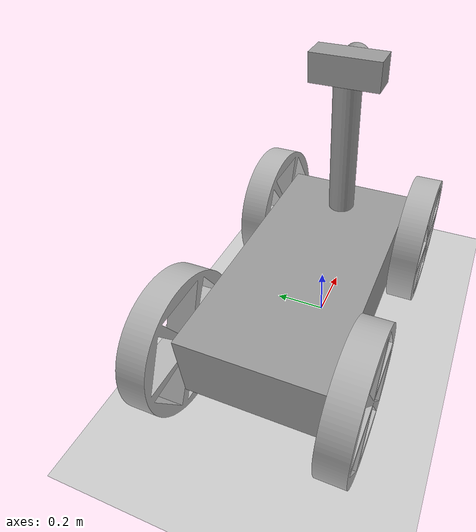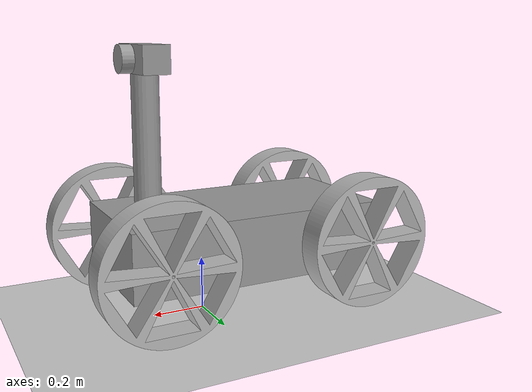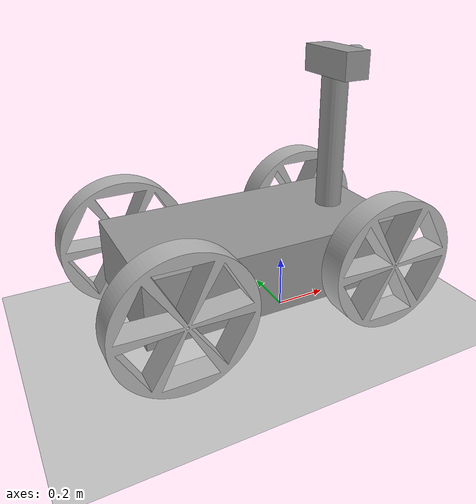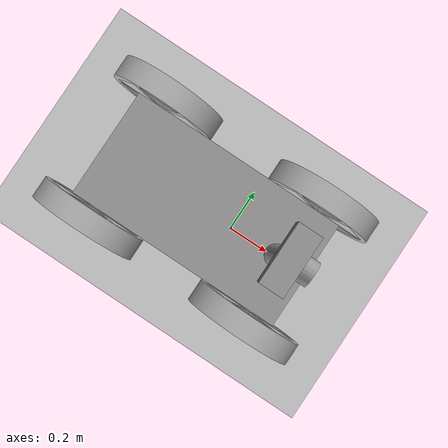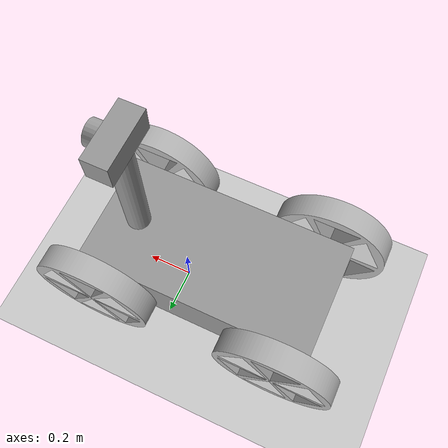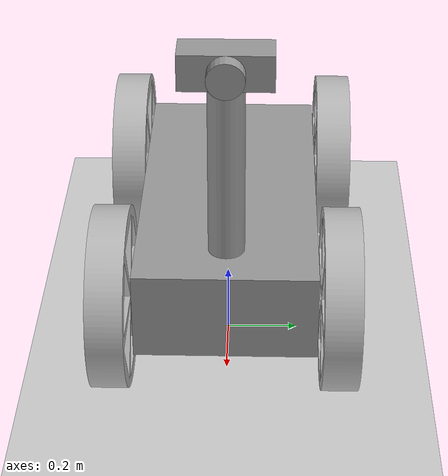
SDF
<sdf version="1.7">
	<world name="project_world">
	<plugin
		filename="ignition-gazebo-physics-system"
		name="gz::sim::systems::Physics">
	</plugin>
	<plugin
		filename="ignition-gazebo-sensors-system"
		name="gz::sim::systems::Sensors">
		<render_engine>ogre</render_engine>
	</plugin>
	<plugin
		filename="ignition-gazebo-user-commands-system"
		name="gz::sim::systems::UserCommands">
	</plugin>
	<plugin
		filename="ignition-gazebo-scene-broadcaster-system"
		name="gz::sim::systems::SceneBroadcaster">
	</plugin>

		<gravity>0 0 -9.8</gravity>
		<include>
			<uri>	https://fuel.gazebosim.org/1.0/OpenRobotics/models/Sun</uri>
		</include>

		<include>
			<uri>ground_plane</uri>
		</include>
		<include>
			<pose>0 0 0.5 0 0 0</pose>
			<uri>mobile_camera</uri>
		</include>

	</world>
</sdf>

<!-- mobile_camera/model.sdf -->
<sdf version='1.7'>
  <model name='mobile_camera'>
    <link name='link_0'>
      <inertial>
        <mass>1</mass>
        <inertia>
          <ixx>0.166667</ixx>
          <ixy>0</ixy>
          <ixz>0</ixz>
          <iyy>0.166667</iyy>
          <iyz>0</iyz>
          <izz>0.166667</izz>
        </inertia>
        <pose>0 0 0 0 -0 0</pose>
      </inertial>
      <pose>-0.14 0 -0.215625 0 -0 0</pose>
      <gravity>1</gravity>
      <self_collide>0</self_collide>
      <kinematic>0</kinematic>
      <enable_wind>0</enable_wind>
      <visual name='visual'>
        <pose>0 0 0 0 -0 0</pose>
        <geometry>
          <box>
            <size>1 0.5 0.25</size>
          </box>
        </geometry>
        <material>
          <lighting>1</lighting>
          <script>
            <uri>file://media/materials/scripts/gazebo.material</uri>
            <name>Gazebo/Grey</name>
          </script>
          <shader type='pixel'>
            <normal_map>__default__</normal_map>
          </shader>
          <ambient>0.3 0.3 0.3 1</ambient>
          <diffuse>0.7 0.7 0.7 1</diffuse>
          <specular>0.01 0.01 0.01 1</specular>
          <emissive>0 0 0 1</emissive>
        </material>
        <transparency>0</transparency>
        <cast_shadows>1</cast_shadows>
      </visual>
      <collision name='collision'>
        <laser_retro>0</laser_retro>
        <max_contacts>10</max_contacts>
        <pose>0 0 0 0 -0 0</pose>
        <geometry>
          <box>
            <size>1 0.5 0.25</size>
          </box>
        </geometry>
        <surface>
          <friction>
            <ode>
              <mu>1</mu>
              <mu2>1</mu2>
              <fdir1>0 0 0</fdir1>
              <slip1>0</slip1>
              <slip2>0</slip2>
            </ode>
            <torsional>
              <coefficient>1</coefficient>
              <patch_radius>0</patch_radius>
              <surface_radius>0</surface_radius>
              <use_patch_radius>1</use_patch_radius>
              <ode>
                <slip>0</slip>
              </ode>
            </torsional>
          </friction>
          <bounce>
            <restitution_coefficient>0</restitution_coefficient>
            <threshold>1e+06</threshold>
          </bounce>
          <contact>
            <collide_without_contact>0</collide_without_contact>
            <collide_without_contact_bitmask>1</collide_without_contact_bitmask>
            <collide_bitmask>1</collide_bitmask>
            <ode>
              <soft_cfm>0</soft_cfm>
              <soft_erp>0.2</soft_erp>
              <kp>1e+13</kp>
              <kd>1</kd>
              <max_vel>0.01</max_vel>
              <min_depth>0</min_depth>
            </ode>
            <bullet>
              <split_impulse>1</split_impulse>
              <split_impulse_penetration_threshold>-0.01</split_impulse_penetration_threshold>
              <soft_cfm>0</soft_cfm>
              <soft_erp>0.2</soft_erp>
              <kp>1e+13</kp>
              <kd>1</kd>
            </bullet>
          </contact>
        </surface>
      </collision>
    </link>
    <link name='link_2'>
      <inertial>
        <mass>1</mass>
        <inertia>
          <ixx>0.145833</ixx>
          <ixy>0</ixy>
          <ixz>0</ixz>
          <iyy>0.145833</iyy>
          <iyz>0</iyz>
          <izz>0.125</izz>
        </inertia>
        <pose>0 0 0 0 -0 0</pose>
      </inertial>
      <pose>0.26 0.31 -0.215625 1.5708 -0 0</pose>
      <gravity>1</gravity>
      <self_collide>0</self_collide>
      <kinematic>0</kinematic>
      <enable_wind>0</enable_wind>
      <visual name='visual'>
        <pose>0 0 0 1.5708 -0 0</pose>
        <geometry>
          <mesh>
            <uri>file:///home/yousef/ros2_cpp_ws/src/cpp_pkg/models/meshes/wheel_red.obj</uri>
            <scale>1 1 1</scale>
          </mesh>
        </geometry>
      </visual>
      <collision name='collision'>
        <laser_retro>0</laser_retro>
        <max_contacts>10</max_contacts>
        <pose>0 0 0 0 -0 0</pose>
        <geometry>
          <cylinder>
            <radius>0.25</radius>
            <length>0.1</length>
          </cylinder>
        </geometry>
        <surface>
          <friction>
            <ode>
              <mu>1</mu>
              <mu2>1</mu2>
              <fdir1>0 0 0</fdir1>
              <slip1>0</slip1>
              <slip2>0</slip2>
            </ode>
            <torsional>
              <coefficient>1</coefficient>
              <patch_radius>0</patch_radius>
              <surface_radius>0</surface_radius>
              <use_patch_radius>1</use_patch_radius>
              <ode>
                <slip>0</slip>
              </ode>
            </torsional>
          </friction>
          <bounce>
            <restitution_coefficient>0</restitution_coefficient>
            <threshold>1e+06</threshold>
          </bounce>
          <contact>
            <collide_without_contact>0</collide_without_contact>
            <collide_without_contact_bitmask>1</collide_without_contact_bitmask>
            <collide_bitmask>1</collide_bitmask>
            <ode>
              <soft_cfm>0</soft_cfm>
              <soft_erp>0.2</soft_erp>
              <kp>1e+13</kp>
              <kd>1</kd>
              <max_vel>0.01</max_vel>
              <min_depth>0</min_depth>
            </ode>
            <bullet>
              <split_impulse>1</split_impulse>
              <split_impulse_penetration_threshold>-0.01</split_impulse_penetration_threshold>
              <soft_cfm>0</soft_cfm>
              <soft_erp>0.2</soft_erp>
              <kp>1e+13</kp>
              <kd>1</kd>
            </bullet>
          </contact>
        </surface>
      </collision>
    </link>
    <link name='link_2_clone'>
      <inertial>
        <mass>1</mass>
        <inertia>
          <ixx>0.145833</ixx>
          <ixy>0</ixy>
          <ixz>0</ixz>
          <iyy>0.145833</iyy>
          <iyz>0</iyz>
          <izz>0.125</izz>
        </inertia>
        <pose>0 0 0 0 -0 0</pose>
      </inertial>
      <pose>0.26 -0.31 -0.215625 1.5708 -0 0</pose>
      <gravity>1</gravity>
      <self_collide>0</self_collide>
      <kinematic>0</kinematic>
      <enable_wind>0</enable_wind>
      <visual name='visual'>
        <pose>0 0 0 1.5708 -0 0</pose>
        <geometry>
          <mesh>
            <uri>file:///home/yousef/ros2_cpp_ws/src/cpp_pkg/models/meshes/wheel_red.obj</uri>
            <scale>1 1 1</scale>
          </mesh>
        </geometry>
      </visual>
      <collision name='collision'>
        <laser_retro>0</laser_retro>
        <max_contacts>10</max_contacts>
        <pose>0 0 0 0 -0 0</pose>
        <geometry>
          <cylinder>
            <radius>0.25</radius>
            <length>0.1</length>
          </cylinder>
        </geometry>
        <surface>
          <friction>
            <ode>
              <mu>1</mu>
              <mu2>1</mu2>
              <fdir1>0 0 0</fdir1>
              <slip1>0</slip1>
              <slip2>0</slip2>
            </ode>
            <torsional>
              <coefficient>1</coefficient>
              <patch_radius>0</patch_radius>
              <surface_radius>0</surface_radius>
              <use_patch_radius>1</use_patch_radius>
              <ode>
                <slip>0</slip>
              </ode>
            </torsional>
          </friction>
          <bounce>
            <restitution_coefficient>0</restitution_coefficient>
            <threshold>1e+06</threshold>
          </bounce>
          <contact>
            <collide_without_contact>0</collide_without_contact>
            <collide_without_contact_bitmask>1</collide_without_contact_bitmask>
            <collide_bitmask>1</collide_bitmask>
            <ode>
              <soft_cfm>0</soft_cfm>
              <soft_erp>0.2</soft_erp>
              <kp>1e+13</kp>
              <kd>1</kd>
              <max_vel>0.01</max_vel>
              <min_depth>0</min_depth>
            </ode>
            <bullet>
              <split_impulse>1</split_impulse>
              <split_impulse_penetration_threshold>-0.01</split_impulse_penetration_threshold>
              <soft_cfm>0</soft_cfm>
              <soft_erp>0.2</soft_erp>
              <kp>1e+13</kp>
              <kd>1</kd>
            </bullet>
          </contact>
        </surface>
      </collision>
    </link>
    <link name='link_2_clone_0'>
      <inertial>
        <mass>1</mass>
        <inertia>
          <ixx>0.145833</ixx>
          <ixy>0</ixy>
          <ixz>0</ixz>
          <iyy>0.145833</iyy>
          <iyz>0</iyz>
          <izz>0.125</izz>
        </inertia>
        <pose>0 0 0 0 -0 0</pose>
      </inertial>
      <pose>-0.54 0.31 -0.215625 1.5708 -0 0</pose>
      <gravity>1</gravity>
      <self_collide>0</self_collide>
      <kinematic>0</kinematic>
      <enable_wind>0</enable_wind>
      <visual name='visual'>
        <pose>0 0 0 1.5708 -0 0</pose>
        <geometry>
          <mesh>
            <uri>file:///home/yousef/ros2_cpp_ws/src/cpp_pkg/models/meshes/wheel_red.obj</uri>
            <scale>1 1 1</scale>
          </mesh>
        </geometry>
      </visual>
      <collision name='collision'>
        <laser_retro>0</laser_retro>
        <max_contacts>10</max_contacts>
        <pose>0 0 0 0 -0 0</pose>
        <geometry>
          <cylinder>
            <radius>0.25</radius>
            <length>0.1</length>
          </cylinder>
        </geometry>
        <surface>
          <friction>
            <ode>
              <mu>0.1</mu>
              <mu2>0.1</mu2>
              <fdir1>0 0 0</fdir1>
              <slip1>0</slip1>
              <slip2>0</slip2>
            </ode>
            <torsional>
              <coefficient>1</coefficient>
              <patch_radius>0</patch_radius>
              <surface_radius>0</surface_radius>
              <use_patch_radius>1</use_patch_radius>
              <ode>
                <slip>0</slip>
              </ode>
            </torsional>
          </friction>
          <bounce>
            <restitution_coefficient>0</restitution_coefficient>
            <threshold>1e+06</threshold>
          </bounce>
          <contact>
            <collide_without_contact>0</collide_without_contact>
            <collide_without_contact_bitmask>1</collide_without_contact_bitmask>
            <collide_bitmask>1</collide_bitmask>
            <ode>
              <soft_cfm>0</soft_cfm>
              <soft_erp>0.2</soft_erp>
              <kp>1e+13</kp>
              <kd>1</kd>
              <max_vel>0.01</max_vel>
              <min_depth>0</min_depth>
            </ode>
            <bullet>
              <split_impulse>1</split_impulse>
              <split_impulse_penetration_threshold>-0.01</split_impulse_penetration_threshold>
              <soft_cfm>0</soft_cfm>
              <soft_erp>0.2</soft_erp>
              <kp>1e+13</kp>
              <kd>1</kd>
            </bullet>
          </contact>
        </surface>
      </collision>
    </link>
    <link name='link_2_clone_1'>
      <inertial>
        <mass>1</mass>
        <inertia>
          <ixx>0.145833</ixx>
          <ixy>0</ixy>
          <ixz>0</ixz>
          <iyy>0.145833</iyy>
          <iyz>0</iyz>
          <izz>0.125</izz>
        </inertia>
        <pose>0 0 0 0 -0 0</pose>
      </inertial>
      <pose>-0.54 -0.31 -0.215625 1.5708 -0 0</pose>
      <gravity>1</gravity>
      <self_collide>0</self_collide>
      <kinematic>0</kinematic>
      <enable_wind>0</enable_wind>
      <visual name='visual'>
        <pose>0 0 0 1.5708 -0 0</pose>
        <geometry>
          <mesh>
            <uri>file:///home/yousef/ros2_cpp_ws/src/cpp_pkg/models/meshes/wheel_red.obj</uri>
            <scale>1 1 1</scale>
          </mesh>
        </geometry>
      </visual>
      <collision name='collision'>
        <laser_retro>0</laser_retro>
        <max_contacts>10</max_contacts>
        <pose>0 0 0 0 -0 0</pose>
        <geometry>
          <cylinder>
            <radius>0.25</radius>
            <length>0.1</length>
          </cylinder>
        </geometry>
        <surface>
          <friction>
            <ode>
              <mu>0.1</mu>
              <mu2>0.1</mu2>
              <fdir1>0 0 0</fdir1>
              <slip1>0</slip1>
              <slip2>0</slip2>
            </ode>
            <torsional>
              <coefficient>1</coefficient>
              <patch_radius>0</patch_radius>
              <surface_radius>0</surface_radius>
              <use_patch_radius>1</use_patch_radius>
              <ode>
                <slip>0</slip>
              </ode>
            </torsional>
          </friction>
          <bounce>
            <restitution_coefficient>0</restitution_coefficient>
            <threshold>1e+06</threshold>
          </bounce>
          <contact>
            <collide_without_contact>0</collide_without_contact>
            <collide_without_contact_bitmask>1</collide_without_contact_bitmask>
            <collide_bitmask>1</collide_bitmask>
            <ode>
              <soft_cfm>0</soft_cfm>
              <soft_erp>0.2</soft_erp>
              <kp>1e+13</kp>
              <kd>1</kd>
              <max_vel>0.01</max_vel>
              <min_depth>0</min_depth>
            </ode>
            <bullet>
              <split_impulse>1</split_impulse>
              <split_impulse_penetration_threshold>-0.01</split_impulse_penetration_threshold>
              <soft_cfm>0</soft_cfm>
              <soft_erp>0.2</soft_erp>
              <kp>1e+13</kp>
              <kd>1</kd>
            </bullet>
          </contact>
        </surface>
      </collision>
    </link>
    <link name='link_3'>
      <inertial>
        <mass>1</mass>
        <inertia>
          <ixx>0.145833</ixx>
          <ixy>0</ixy>
          <ixz>0</ixz>
          <iyy>0.145833</iyy>
          <iyz>0</iyz>
          <izz>0.125</izz>
        </inertia>
        <pose>0 0 0 0 -0 0</pose>
      </inertial>
      <pose>0.21 0 0.159375 0 -0 0</pose>
      <gravity>1</gravity>
      <self_collide>0</self_collide>
      <kinematic>0</kinematic>
      <enable_wind>0</enable_wind>
      <visual name='visual'>
        <pose>0 0 0 0 -0 0</pose>
        <geometry>
          <cylinder>
            <radius>0.05</radius>
            <length>0.5</length>
          </cylinder>
        </geometry>
        <material>
          <lighting>1</lighting>
          <script>
            <uri>file://media/materials/scripts/gazebo.material</uri>
            <name>Gazebo/Grey</name>
          </script>
          <shader type='pixel'>
            <normal_map>__default__</normal_map>
          </shader>
          <ambient>0.3 0.3 0.3 1</ambient>
          <diffuse>0.7 0.7 0.7 1</diffuse>
          <specular>0.01 0.01 0.01 1</specular>
          <emissive>0 0 0 1</emissive>
        </material>
        <transparency>0</transparency>
        <cast_shadows>1</cast_shadows>
      </visual>
      <collision name='collision'>
        <laser_retro>0</laser_retro>
        <max_contacts>10</max_contacts>
        <pose>0 0 0 0 -0 0</pose>
        <geometry>
          <cylinder>
            <radius>0.05</radius>
            <length>0.5</length>
          </cylinder>
        </geometry>
        <surface>
          <friction>
            <ode>
              <mu>1</mu>
              <mu2>1</mu2>
              <fdir1>0 0 0</fdir1>
              <slip1>0</slip1>
              <slip2>0</slip2>
            </ode>
            <torsional>
              <coefficient>1</coefficient>
              <patch_radius>0</patch_radius>
              <surface_radius>0</surface_radius>
              <use_patch_radius>1</use_patch_radius>
              <ode>
                <slip>0</slip>
              </ode>
            </torsional>
          </friction>
          <bounce>
            <restitution_coefficient>0</restitution_coefficient>
            <threshold>1e+06</threshold>
          </bounce>
          <contact>
            <collide_without_contact>0</collide_without_contact>
            <collide_without_contact_bitmask>1</collide_without_contact_bitmask>
            <collide_bitmask>1</collide_bitmask>
            <ode>
              <soft_cfm>0</soft_cfm>
              <soft_erp>0.2</soft_erp>
              <kp>1e+13</kp>
              <kd>1</kd>
              <max_vel>0.01</max_vel>
              <min_depth>0</min_depth>
            </ode>
            <bullet>
              <split_impulse>1</split_impulse>
              <split_impulse_penetration_threshold>-0.01</split_impulse_penetration_threshold>
              <soft_cfm>0</soft_cfm>
              <soft_erp>0.2</soft_erp>
              <kp>1e+13</kp>
              <kd>1</kd>
            </bullet>
          </contact>
        </surface>
      </collision>
    </link>
    <link name='link_4'>
      <inertial>
        <mass>1</mass>
        <inertia>
          <ixx>0.166667</ixx>
          <ixy>0</ixy>
          <ixz>0</ixz>
          <iyy>0.166667</iyy>
          <iyz>0</iyz>
          <izz>0.166667</izz>
        </inertia>
        <pose>0 0 0 0 -0 0</pose>
      </inertial>
      <pose>0.21 0 0.459375 0 -0 0</pose>
      <gravity>1</gravity>
      <self_collide>0</self_collide>
      <kinematic>0</kinematic>
      <enable_wind>0</enable_wind>
      <visual name='visual'>
        <pose>0 0 0 0 -0 0</pose>
        <geometry>
          <box>
            <size>0.1 0.25 0.1</size>
          </box>
        </geometry>
        <material>
          <lighting>1</lighting>
          <script>
            <uri>file://media/materials/scripts/gazebo.material</uri>
            <name>Gazebo/Grey</name>
          </script>
          <shader type='pixel'>
            <normal_map>__default__</normal_map>
          </shader>
          <ambient>0.3 0.3 0.3 1</ambient>
          <diffuse>0.7 0.7 0.7 1</diffuse>
          <specular>0.01 0.01 0.01 1</specular>
          <emissive>0 0 0 1</emissive>
        </material>
        <transparency>0</transparency>
        <cast_shadows>1</cast_shadows>
      </visual>
      <collision name='collision'>
        <laser_retro>0</laser_retro>
        <max_contacts>10</max_contacts>
        <pose>0 0 0 0 -0 0</pose>
        <geometry>
          <box>
            <size>0.1 0.25 0.1</size>
          </box>
        </geometry>
        <surface>
          <friction>
            <ode>
              <mu>1</mu>
              <mu2>1</mu2>
              <fdir1>0 0 0</fdir1>
              <slip1>0</slip1>
              <slip2>0</slip2>
            </ode>
            <torsional>
              <coefficient>1</coefficient>
              <patch_radius>0</patch_radius>
              <surface_radius>0</surface_radius>
              <use_patch_radius>1</use_patch_radius>
              <ode>
                <slip>0</slip>
              </ode>
            </torsional>
          </friction>
          <bounce>
            <restitution_coefficient>0</restitution_coefficient>
            <threshold>1e+06</threshold>
          </bounce>
          <contact>
            <collide_without_contact>0</collide_without_contact>
            <collide_without_contact_bitmask>1</collide_without_contact_bitmask>
            <collide_bitmask>1</collide_bitmask>
            <ode>
              <soft_cfm>0</soft_cfm>
              <soft_erp>0.2</soft_erp>
              <kp>1e+13</kp>
              <kd>1</kd>
              <max_vel>0.01</max_vel>
              <min_depth>0</min_depth>
            </ode>
            <bullet>
              <split_impulse>1</split_impulse>
              <split_impulse_penetration_threshold>-0.01</split_impulse_penetration_threshold>
              <soft_cfm>0</soft_cfm>
              <soft_erp>0.2</soft_erp>
              <kp>1e+13</kp>
              <kd>1</kd>
            </bullet>
          </contact>
        </surface>
      </collision>
      <sensor name="camera" type="camera">
        <pose>0.25 0 0 0 0 0</pose>
        <camera>
          <horizontal_fov>1.047</horizontal_fov>
          <image>
            <width>640</width>
            <height>480</height>
          </image>
          <clip>
            <near>0.1</near>
            <far>100</far>
          </clip>
        </camera>
        <always_on>1</always_on>
        <update_rate>60</update_rate>
        <visualize>true</visualize>
        <topic>camera</topic>
      </sensor>
    </link>
    <link name='link_5'>
      <inertial>
        <mass>1</mass>
        <inertia>
          <ixx>0.145833</ixx>
          <ixy>0</ixy>
          <ixz>0</ixz>
          <iyy>0.145833</iyy>
          <iyz>0</iyz>
          <izz>0.125</izz>
        </inertia>
        <pose>0 0 0 0 -0 0</pose>
      </inertial>
      <pose>0.28 0 0.459375 3.14159 1.57079 3.14159</pose>
      <gravity>1</gravity>
      <self_collide>0</self_collide>
      <kinematic>0</kinematic>
      <enable_wind>0</enable_wind>
      <visual name='visual'>
        <pose>0 0 0 0 -0 0</pose>
        <geometry>
          <cylinder>
            <radius>0.05</radius>
            <length>0.05</length>
          </cylinder>
        </geometry>
        <material>
          <lighting>1</lighting>
          <script>
            <uri>file://media/materials/scripts/gazebo.material</uri>
            <name>Gazebo/Grey</name>
          </script>
          <shader type='pixel'>
            <normal_map>__default__</normal_map>
          </shader>
          <ambient>0.3 0.3 0.3 1</ambient>
          <diffuse>0.7 0.7 0.7 1</diffuse>
          <specular>0.01 0.01 0.01 1</specular>
          <emissive>0 0 0 1</emissive>
        </material>
        <transparency>0</transparency>
        <cast_shadows>1</cast_shadows>
      </visual>
      <collision name='collision'>
        <laser_retro>0</laser_retro>
        <max_contacts>10</max_contacts>
        <pose>0 0 0 0 -0 0</pose>
        <geometry>
          <cylinder>
            <radius>0.05</radius>
            <length>0.05</length>
          </cylinder>
        </geometry>
        <surface>
          <friction>
            <ode>
              <mu>1</mu>
              <mu2>1</mu2>
              <fdir1>0 0 0</fdir1>
              <slip1>0</slip1>
              <slip2>0</slip2>
            </ode>
            <torsional>
              <coefficient>1</coefficient>
              <patch_radius>0</patch_radius>
              <surface_radius>0</surface_radius>
              <use_patch_radius>1</use_patch_radius>
              <ode>
                <slip>0</slip>
              </ode>
            </torsional>
          </friction>
          <bounce>
            <restitution_coefficient>0</restitution_coefficient>
            <threshold>1e+06</threshold>
          </bounce>
          <contact>
            <collide_without_contact>0</collide_without_contact>
            <collide_without_contact_bitmask>1</collide_without_contact_bitmask>
            <collide_bitmask>1</collide_bitmask>
            <ode>
              <soft_cfm>0</soft_cfm>
              <soft_erp>0.2</soft_erp>
              <kp>1e+13</kp>
              <kd>1</kd>
              <max_vel>0.01</max_vel>
              <min_depth>0</min_depth>
            </ode>
            <bullet>
              <split_impulse>1</split_impulse>
              <split_impulse_penetration_threshold>-0.01</split_impulse_penetration_threshold>
              <soft_cfm>0</soft_cfm>
              <soft_erp>0.2</soft_erp>
              <kp>1e+13</kp>
              <kd>1</kd>
            </bullet>
          </contact>
        </surface>
      </collision>
    </link>
    <joint name='link_0_JOINT_0' type='revolute'>
      <parent>link_0</parent>
      <child>link_2</child>
      <pose>0 0 0 0 -0 0</pose>
      <axis>
        <xyz>-0 -0 -1</xyz>
        <limit>
          <lower>-1.79769e+308</lower>
          <upper>1.79769e+308</upper>
          <effort>-1</effort>
          <velocity>-1</velocity>
        </limit>
        <dynamics>
          <spring_reference>0</spring_reference>
          <spring_stiffness>0</spring_stiffness>
          <damping>0</damping>
        </dynamics>
      </axis>
      <physics>
        <ode>
          <limit>
            <cfm>0</cfm>
            <erp>0.2</erp>
          </limit>
          <suspension>
            <cfm>0</cfm>
            <erp>0.2</erp>
          </suspension>
        </ode>
      </physics>
    </joint>
    <joint name='link_0_JOINT_1' type='revolute'>
      <parent>link_0</parent>
      <child>link_2_clone</child>
      <pose>0 0 0 0 -0 0</pose>
      <axis>
        <xyz>-0 -0 -1</xyz>
        <limit>
          <lower>-1.79769e+308</lower>
          <upper>1.79769e+308</upper>
          <effort>-1</effort>
          <velocity>-1</velocity>
        </limit>
        <dynamics>
          <spring_reference>0</spring_reference>
          <spring_stiffness>0</spring_stiffness>
          <damping>0</damping>
        </dynamics>
      </axis>
      <physics>
        <ode>
          <limit>
            <cfm>0</cfm>
            <erp>0.2</erp>
          </limit>
          <suspension>
            <cfm>0</cfm>
            <erp>0.2</erp>
          </suspension>
        </ode>
      </physics>
    </joint>
    <joint name='link_0_JOINT_2' type='revolute'>
      <parent>link_0</parent>
      <child>link_2_clone_0</child>
      <pose>0 0 0 0 -0 0</pose>
      <axis>
        <xyz>-0 -0 -1</xyz>
        <limit>
          <lower>-1.79769e+308</lower>
          <upper>1.79769e+308</upper>
          <effort>-1</effort>
          <velocity>-1</velocity>
        </limit>
        <dynamics>
          <spring_reference>0</spring_reference>
          <spring_stiffness>0</spring_stiffness>
          <damping>0</damping>
        </dynamics>
      </axis>
      <physics>
        <ode>
          <limit>
            <cfm>0</cfm>
            <erp>0.2</erp>
          </limit>
          <suspension>
            <cfm>0</cfm>
            <erp>0.2</erp>
          </suspension>
        </ode>
      </physics>
    </joint>
    <joint name='link_0_JOINT_3' type='revolute'>
      <parent>link_0</parent>
      <child>link_2_clone_1</child>
      <pose>0 0 0 0 -0 0</pose>
      <axis>
        <xyz>-0 -0 -1</xyz>
        <limit>
          <lower>-1.79769e+308</lower>
          <upper>1.79769e+308</upper>
          <effort>-1</effort>
          <velocity>-1</velocity>
        </limit>
        <dynamics>
          <spring_reference>0</spring_reference>
          <spring_stiffness>0</spring_stiffness>
          <damping>0</damping>
        </dynamics>
      </axis>
      <physics>
        <ode>
          <limit>
            <cfm>0</cfm>
            <erp>0.2</erp>
          </limit>
          <suspension>
            <cfm>0</cfm>
            <erp>0.2</erp>
          </suspension>
        </ode>
      </physics>
    </joint>
    <joint name='link_0_JOINT_4' type='revolute'>
      <parent>link_0</parent>
      <child>link_3</child>
      <pose>0 0 0 0 -0 0</pose>
      <axis>
        <xyz>0 0 1</xyz>
        <limit>
          <lower>-1.79769e+308</lower>
          <upper>1.79769e+308</upper>
          <effort>-1</effort>
          <velocity>-1</velocity>
        </limit>
        <dynamics>
          <spring_reference>0</spring_reference>
          <spring_stiffness>0</spring_stiffness>
          <damping>0.5</damping>
        </dynamics>
      </axis>
      <physics>
        <ode>
          <limit>
            <cfm>0</cfm>
            <erp>0.2</erp>
          </limit>
          <suspension>
            <cfm>0</cfm>
            <erp>0.2</erp>
          </suspension>
        </ode>
      </physics>
    </joint>
    <joint name='link_3_JOINT_5' type='fixed'>
      <parent>link_3</parent>
      <child>link_4</child>
      <pose>0 0 0 0 -0 0</pose>
      <physics>
        <ode>
          <limit>
            <cfm>0</cfm>
            <erp>0.2</erp>
          </limit>
          <suspension>
            <cfm>0</cfm>
            <erp>0.2</erp>
          </suspension>
        </ode>
      </physics>
    </joint>
    <joint name='link_4_JOINT_6' type='fixed'>
      <parent>link_4</parent>
      <child>link_5</child>
      <pose>0 0 0 0 -0 0</pose>
      <physics>
        <ode>
          <limit>
            <cfm>0</cfm>
            <erp>0.2</erp>
          </limit>
          <suspension>
            <cfm>0</cfm>
            <erp>0.2</erp>
          </suspension>
        </ode>
      </physics>
    </joint>
    <static>0</static>
    <allow_auto_disable>1</allow_auto_disable>
    <plugin
    filename="ignition-gazebo-diff-drive-system"
    name="gz::sim::systems::DiffDrive">
      <left_joint>link_0_JOINT_0</left_joint>
      <right_joint>link_0_JOINT_1</right_joint>
      <wheel_separation>0.62</wheel_separation>
      <wheel_radius>0.25</wheel_radius>
      <max_linear_acceleration>1</max_linear_acceleration>
      <min_linear_acceleration>-1</min_linear_acceleration>
      <max_angular_acceleration>2</max_angular_acceleration>
      <min_angular_acceleration>-2</min_angular_acceleration>
      <max_linear_velocity>3</max_linear_velocity>
      <min_linear_velocity>-3</min_linear_velocity>
      <max_angular_velocity>1</max_angular_velocity>
      <min_angular_velocity>-1</min_angular_velocity>
      <topic>/cmd_vel</topic>
    </plugin>
    <plugin
    filename="ignition-gazebo-diff-drive-system"
    name="gz::sim::systems::DiffDrive">
      <left_joint>link_0_JOINT_2</left_joint>
      <right_joint>link_0_JOINT_3</right_joint>
      <wheel_separation>0.62</wheel_separation>
      <wheel_radius>0.25</wheel_radius>
      <max_linear_acceleration>1</max_linear_acceleration>
      <min_linear_acceleration>-1</min_linear_acceleration>
      <max_angular_acceleration>2</max_angular_acceleration>
      <min_angular_acceleration>-2</min_angular_acceleration>
      <max_linear_velocity>3</max_linear_velocity>
      <min_linear_velocity>-3</min_linear_velocity>
      <max_angular_velocity>1</max_angular_velocity>
      <min_angular_velocity>-1</min_angular_velocity>
      <topic>/cmd_vel</topic>
    </plugin>
    <plugin
    filename="ignition-gazebo-joint-position-controller-system"
    name="gz::sim::systems::JointPositionController">
    <joint_name>link_0_JOINT_4</joint_name>
    <topic>rotor_cmd</topic>
    <p_gain>1</p_gain>
    <i_gain>0.1</i_gain>
    <d_gain>0.01</d_gain>
    <i_max>1</i_max>
    <i_min>-1</i_min>
    <cmd_max>1000</cmd_max>
    <cmd_min>-1000</cmd_min>
  </plugin>
  </model>
</sdf>
